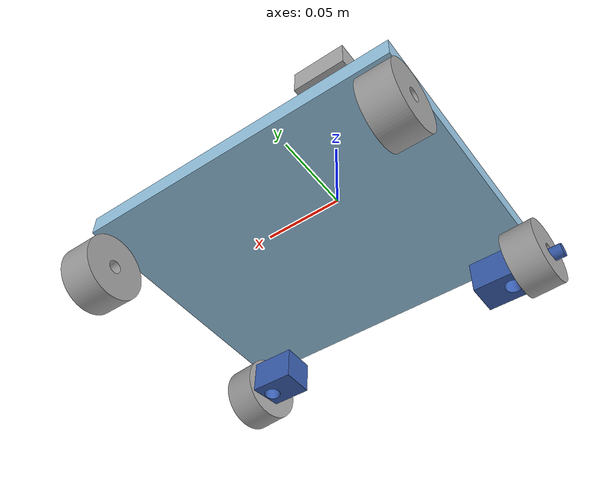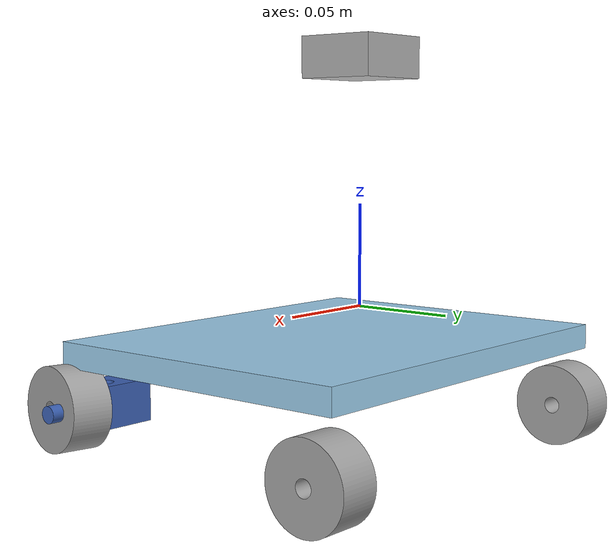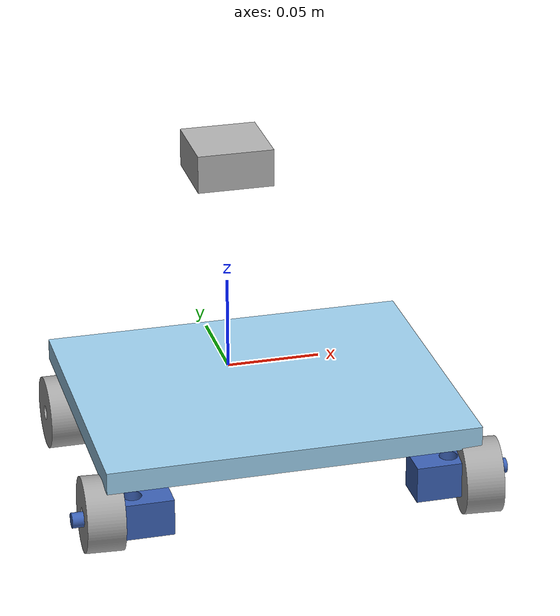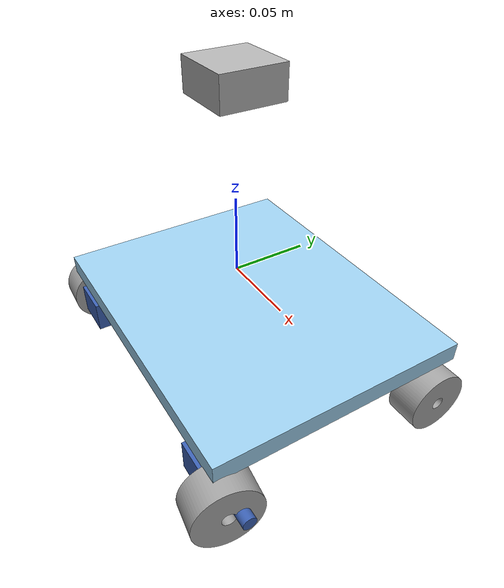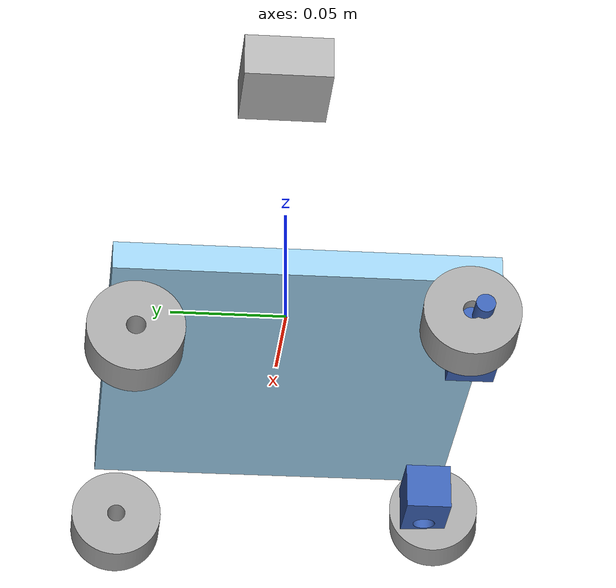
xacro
<?xml version="1.0"?>
<robot name="steer" xmlns:xacro="http://ros.org/wiki/xacro">

  <!-- Declare arguments for configs and ros2_control -->
  <xacro:arg name="use_ros2_control" default="true"/>
  <xacro:arg name="params_file" default="$(find steering_wheel)/config/controllers.yaml"/>

  <!-- Properties -->
  <xacro:property name="mesh_dir"      value="package://steering_wheel/description/assets"/>
  <xacro:property name="ros_namespace" value="ugv"/>
  <xacro:property name="rsp_node"      value="/ugv/robot_state_publisher"/>

  <!-- Include files -->
  <xacro:include filename="macros/materials.xacro"/>
  <xacro:include filename="macros/mesh_link.xacro"/>
  <xacro:include filename="ros2_control.xacro"/>

  <!-- Links  -->
  <xacro:mesh_link name="body" mass="3.0"
      ixx="0.02" iyy="0.02" izz="0.03" ixy="0" ixz="0" iyz="0"
      mesh_file="${mesh_dir}/body.stl"
      vis_xyz="0.00637695 0.0201042 -0.0232289"
      vis_rpy="0 0 0" mat="body_material"/>

  <xacro:mesh_link name="knuckles" mass="2.0"
      ixx="0.02" iyy="0.02" izz="0.02" ixy="0" ixz="0" iyz="0"
      mesh_file="${mesh_dir}/knuckles.stl"
      vis_xyz="1.38778e-17 -1.38778e-16 0.02"
      vis_rpy="3.14159 0 0" mat="knuckles_material"/>

  <xacro:mesh_link name="wheel" mass="2.0"
      ixx="0.02" iyy="0.02" izz="0.02" ixy="0" ixz="0" iyz="0"
      mesh_file="${mesh_dir}/wheel.stl"
      vis_xyz="0 0 0" vis_rpy="1.4 0 1.7" mat="wheel_material"/>

  <xacro:mesh_link name="knuckles_2" mass="2.0"
      ixx="0.02" iyy="0.02" izz="0.02" ixy="0" ixz="0" iyz="0"
      mesh_file="${mesh_dir}/knuckles.stl"
      vis_xyz="1.38778e-17 -1.38778e-17 0"
      vis_rpy="0 0 3.14159" mat="knuckles_2_material"/>

  <xacro:mesh_link name="wheel_2" mass="2.0"
      ixx="0.02" iyy="0.02" izz="0.02" ixy="0" ixz="0" iyz="0"
      mesh_file="${mesh_dir}/wheel.stl"
      vis_xyz="0 0 0" vis_rpy="1.7 0 1.7" mat="wheel_2_material"/>

  <xacro:mesh_link name="wheel_3" mass="2.0"
      ixx="0.02" iyy="0.02" izz="0.02" ixy="0" ixz="0" iyz="0"
      mesh_file="${mesh_dir}/wheel.stl"
      vis_xyz="0 1.38778e-17 -0.02"
      vis_rpy="-1.5708 -9.93006e-17 -0.625192" mat="wheel_3_material"/>

  <xacro:mesh_link name="wheel_4" mass="2.0"
      ixx="0.02" iyy="0.02" izz="0.02" ixy="0" ixz="0" iyz="0"
      mesh_file="${mesh_dir}/wheel.stl"
      vis_xyz="0 -1.38778e-17 0.02"
      vis_rpy="1.5708 -4.79097e-17 -0.713125" mat="wheel_4_material"/>

  <!-- Joints  -->
  <joint name="spin_fl" type="continuous">
    <origin xyz="0.0249198 -0.00741653 0.01" rpy="-1.5708 0 -1.86006"/>
    <parent link="knuckles"/><child link="wheel"/>
    <axis xyz="0 0 1"/>
    <limit effort="10" velocity="10" lower="-3.141592653589793" upper="3.141592653589793"/>
  </joint>

  <joint name="steer_fl" type="revolute">
    <origin xyz="0.101322 -0.0720623 -0.0512289" rpy="0 0 0"/>
    <parent link="body"/><child link="knuckles"/>
    <axis xyz="0 0 1"/>
    <limit effort="10" velocity="10" lower="-3.141592653589793" upper="3.141592653589793"/>
  </joint>

  <joint name="spin_fr" type="continuous">
    <origin xyz="-0.025623 0.00441163 0.01" rpy="1.5708 0 -1.7413"/>
    <parent link="knuckles_2"/><child link="wheel_2"/>
    <axis xyz="0 0 1"/>
    <limit effort="10" velocity="10" lower="-3.141592653589793" upper="3.141592653589793"/>
  </joint>

  <joint name="steer_fr" type="revolute">
    <origin xyz="-0.0686778 -0.0720623 -0.0512289" rpy="0 0 0"/>
    <parent link="body"/><child link="knuckles_2"/>
    <axis xyz="0 0 1"/>
    <limit effort="10" velocity="10" lower="-3.141592653589793" upper="3.141592653589793"/>
  </joint>

  <joint name="spin_rl" type="continuous">
    <origin xyz="0.101322 0.0679377 -0.0512289" rpy="0 -1.5708 0"/>
    <parent link="body"/><child link="wheel_3"/>
    <axis xyz="0 0 1"/>
    <limit effort="10" velocity="10" lower="-3.141592653589793" upper="3.141592653589793"/>
  </joint>

  <joint name="spin_rr" type="continuous">
    <origin xyz="-0.0686778 0.0679377 -0.0512289" rpy="0 -1.5708 0"/>
    <parent link="body"/><child link="wheel_4"/>
    <axis xyz="0 0 1"/>
    <limit effort="10" velocity="10" lower="-3.141592653589793" upper="3.141592653589793"/>
  </joint>

  <!-- Camera  -->
  <link name="camera_link">
    <inertial>
      <origin xyz="0 0 0" rpy="0 0 0"/>
      <mass value="0.05"/>
      <inertia ixx="1e-5" ixy="0" ixz="0" iyy="1e-5" iyz="0" izz="1e-5"/>
    </inertial>
    <visual>
      <origin xyz="0 0 0" rpy="0 0 0"/>
      <geometry><box size="0.04 0.04 0.02"/></geometry>
    </visual>
  </link>

  <joint name="camera_mount" type="fixed">
    <parent link="body"/><child link="camera_link"/>
    <origin xyz="0 0.0 0.12" rpy="0 0 -1.5708"/>
  </joint>

  <link name="camera_link_optical"/>
  <joint name="camera_optical_joint" type="fixed">
    <parent link="camera_link"/><child link="camera_link_optical"/>
    <origin xyz="0 0 0" rpy="-1.5708 0 -1.5708"/>
  </joint>

  <!-- Gazebo sensors on camera_link -->
  <gazebo reference="camera_link">
    <sensor name="rgb_camera" type="camera">
      <update_rate>30</update_rate><always_on>true</always_on>
      <topic>/ugv/camera/image</topic>
      <camera>
        <horizontal_fov>1.047</horizontal_fov>
        <image><width>640</width><height>480</height><format>R8G8B8</format></image>
        <clip><near>0.05</near><far>50.0</far></clip>
      </camera>
    </sensor>
    <sensor name="depth_camera" type="depth_camera">
      <update_rate>30</update_rate><always_on>true</always_on>
      <topic>/ugv/camera/depth_image</topic>
      <camera>
        <horizontal_fov>1.047</horizontal_fov>
        <image><width>640</width><height>480</height></image>
        <clip><near>0.20</near><far>20.0</far></clip>
      </camera>
    </sensor>
  </gazebo>

  <!-- ros2_control xacro call -->
  <xacro:if value="$(arg use_ros2_control)">
    <xacro:steer_ros2_control
      name="ugv_steer_system"
      robot_param="robot_description"
      robot_param_node="${rsp_node}"
      ros_namespace="${ros_namespace}"
      update_rate="50"
      params_file="$(find steering_wheel)/config/controllers.yaml"/>
  </xacro:if>

</robot>

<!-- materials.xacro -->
<robot name="materials" xmlns:xacro="http://ros.org/wiki/xacro">
  <material name="body_material">
    <color rgba="0.615686 0.811765 0.929412 1"/>
  </material>

  <material name="knuckles_material">
    <color rgba="0.231373 0.380392 0.705882 1"/>
  </material>

  <material name="wheel_material">
    <color rgba="0.647059 0.647059 0.647059 1"/>
  </material>

  <material name="knuckles_2_material">
    <color rgba="0.231373 0.380392 0.705882 1"/>
  </material>

  <material name="wheel_2_material">
    <color rgba="0.647059 0.647059 0.647059 1"/>
  </material>

  <material name="wheel_3_material">
    <color rgba="0.647059 0.647059 0.647059 1"/>
  </material>

  <material name="wheel_4_material">
    <color rgba="0.647059 0.647059 0.647059 1"/>
  </material>
</robot>

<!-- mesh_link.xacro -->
<robot name="mesh_link_macros" xmlns:xacro="http://ros.org/wiki/xacro">

  <!--
    Creates a link with inertial + shared mesh for visual/collision.
    Required args:
      name, mass, ixx iyy izz ixy ixz iyz, mesh_file, vis_xyz, vis_rpy, mat
  -->
  <xacro:macro name="mesh_link" params="
      name
      mass
      ixx iyy izz ixy ixz iyz
      mesh_file
      vis_xyz vis_rpy
      mat">

    <link name="${name}">
      <inertial>
        <origin xyz="0 0 0" rpy="0 0 0"/>
        <mass value="${mass}"/>
        <inertia ixx="${ixx}" ixy="${ixy}" ixz="${ixz}" iyy="${iyy}" iyz="${iyz}" izz="${izz}"/>
      </inertial>

      <visual>
        <origin xyz="${vis_xyz}" rpy="${vis_rpy}"/>
        <geometry>
          <mesh filename="${mesh_file}"/>
        </geometry>
        <material name="${mat}"/>
      </visual>

      <collision>
        <origin xyz="${vis_xyz}" rpy="${vis_rpy}"/>
        <geometry>
          <mesh filename="${mesh_file}"/>
        </geometry>
      </collision>
    </link>

  </xacro:macro>

</robot>
